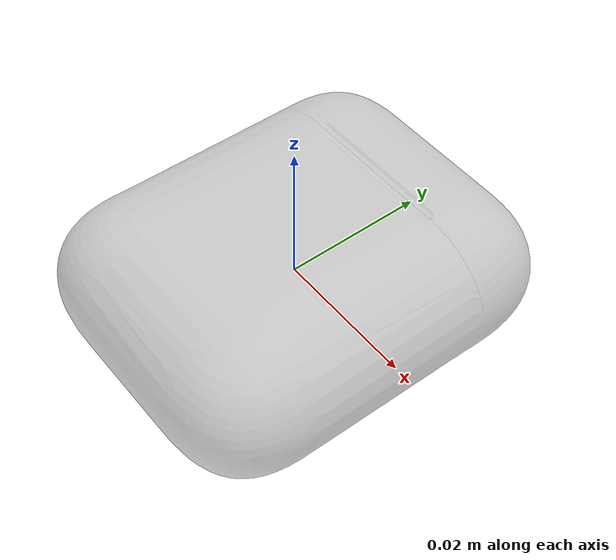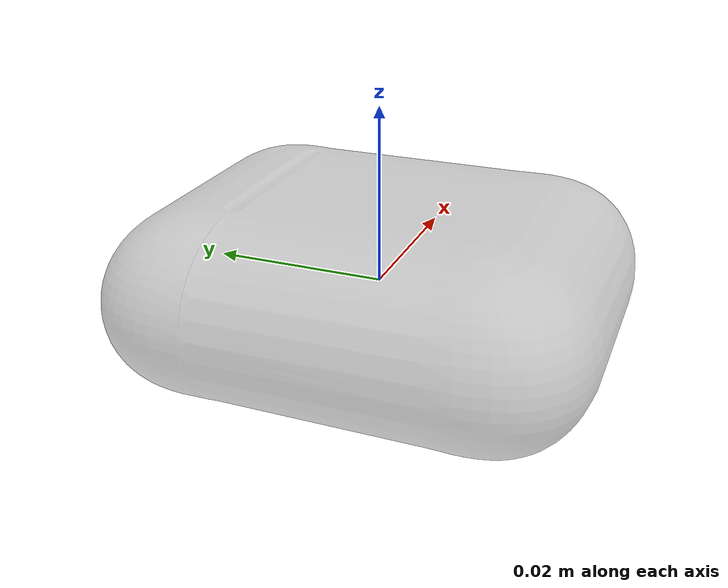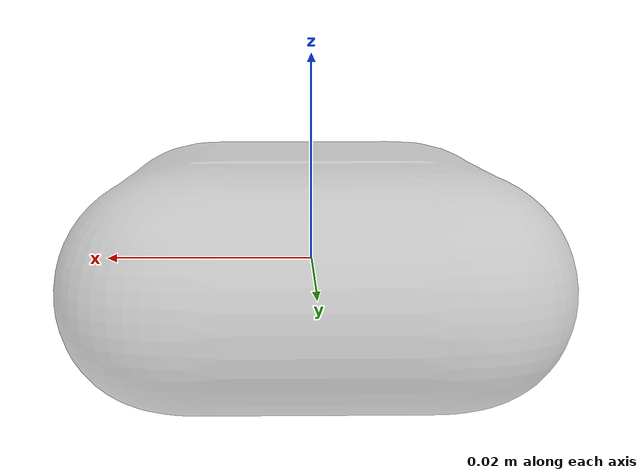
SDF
<?xml version="1.0" ?>
<sdf version='1.6'>
  <model name='airpods'>
    <link name='airpods'>
      <pose frame=''>0 0 0 0 -0 0</pose>
      <inertial>
        <pose frame=''>0 0 0 0 -0 0</pose>
        <mass>0.05</mass>
        <inertia>
          <ixx>0</ixx>
          <ixy>0</ixy>
          <ixz>0</ixz>
          <iyy>0</iyy>
          <iyz>0</iyz>
          <izz>0</izz>
        </inertia>
      </inertial>
      <collision name='airpods_collision'>
        <pose frame=''>0 0 0 0 -0 0</pose>
        <geometry>
             <box>
              <size>0.04 0.04 0.04</size>
            </box>
        </geometry>
        <surface>
	    <friction>
	      <ode>
		<mu>0.5</mu>
		<mu2>0.5</mu2>
	      </ode>
	    </friction>
	    <contact>
	      <ode>
		<kp>1000000.0</kp>
		<kd>1.0</kd>
		<max_vel>1.0</max_vel>
		<min_depth>0.0025</min_depth>
	      </ode>
	    </contact>
	  </surface>
      </collision>
      <velocity_decay>
      <linear>0.000000</linear>
      <angular>0.000000</angular>
      </velocity_decay>
      <self_collide>0</self_collide>
      <kinematic>0</kinematic>
      <gravity>1</gravity>
      <visual name='airpods_visual'>
      <material>
          <script>
            <uri>file://media/materials/scripts/gazebo.material</uri>
            <name>Gazebo/GreyTransparent</name>
          </script>
        </material>
        <pose frame=''>0 0 0 0 -0 0</pose>
        <geometry>
          <mesh>
            <scale>1 1 1</scale>
            <uri>model://airpods/meshes/airpods.STL</uri>
          </mesh>
        </geometry>
      </visual>
    </link>
  </model>
</sdf>
